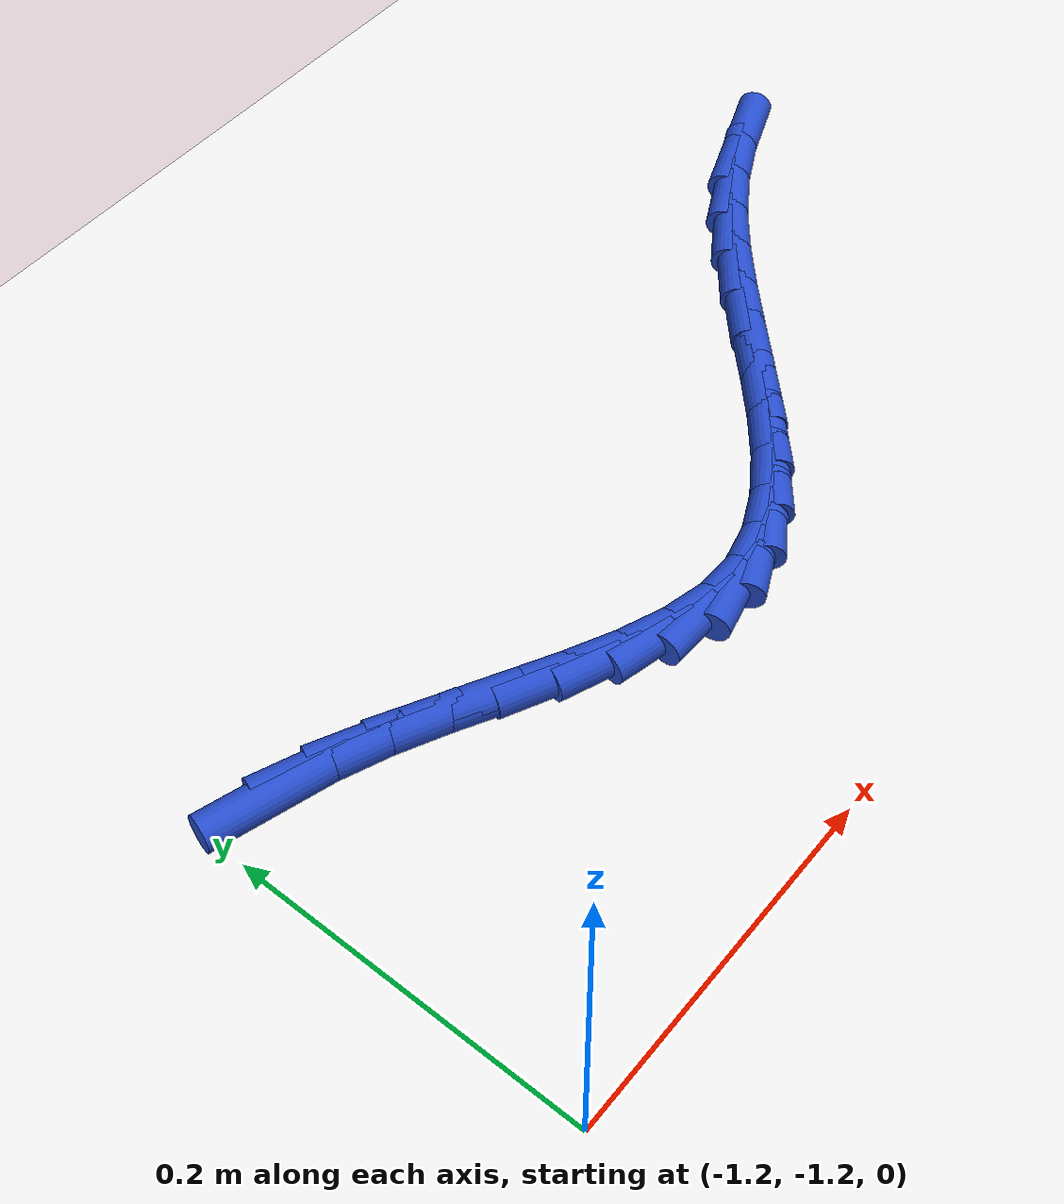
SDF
<sdf version="1.6">
 <world name="default">
  <model name="ground_plane">
   <static>1</static>
   <link name="link">
    <collision name="collision">
     <geometry><plane><normal>0 0 1</normal><size>100 100</size></plane></geometry>
     <surface><friction><ode><mu>100</mu><mu2>50</mu2></ode></friction></surface>
    </collision>
    <visual name="visual">
     <cast_shadows>0</cast_shadows>
     <geometry><plane><normal>0 0 1</normal><size>100 100</size></plane></geometry>
     <material>
      <script><uri>file://media/materials/scripts/gazebo.material</uri><name>Gazebo/WhiteGlow</name></script>
     </material>
    </visual>
   </link>
  </model>
  <model name="line">
   <link name="link_188">
    <pose>-1.1666198105476937 -0.989387603852553 0.01 0 1.57 -0.2926532367703987</pose>
    <collision name="collision">
     <geometry><cylinder><radius>0.01</radius><length>0.08</length></cylinder></geometry>
    </collision>
    <visual name="visual">
     <material>
      <script><name>Gazebo/Blue</name><uri>file://media/materials/scripts/gazebo.material</uri></script>
     </material>
     <geometry><cylinder><radius>0.01</radius><length>0.08</length></cylinder></geometry>
    </visual>
   </link>
   <link name="link_189">
    <pose>-1.1386888721834287 -0.997803323812133 0.01 0 1.57 -0.3842840730936396</pose>
    <collision name="collision">
     <geometry><cylinder><radius>0.01</radius><length>0.08</length></cylinder></geometry>
    </collision>
    <visual name="visual">
     <material>
      <script><name>Gazebo/Blue</name><uri>file://media/materials/scripts/gazebo.material</uri></script>
     </material>
     <geometry><cylinder><radius>0.01</radius><length>0.08</length></cylinder></geometry>
    </visual>
   </link>
   <link name="link_190">
    <pose>-1.1108244035250654 -1.0090714022984135 0.01 0 1.57 -0.4567717611284296</pose>
    <collision name="collision">
     <geometry><cylinder><radius>0.01</radius><length>0.08</length></cylinder></geometry>
    </collision>
    <visual name="visual">
     <material>
      <script><name>Gazebo/Blue</name><uri>file://media/materials/scripts/gazebo.material</uri></script>
     </material>
     <geometry><cylinder><radius>0.01</radius><length>0.08</length></cylinder></geometry>
    </visual>
   </link>
   <link name="link_191">
    <pose>-1.082937738401519 -1.0227758717054432 0.01 0 1.57 -0.49263852632582406</pose>
    <collision name="collision">
     <geometry><cylinder><radius>0.01</radius><length>0.08</length></cylinder></geometry>
    </collision>
    <visual name="visual">
     <material>
      <script><name>Gazebo/Blue</name><uri>file://media/materials/scripts/gazebo.material</uri></script>
     </material>
     <geometry><cylinder><radius>0.01</radius><length>0.08</length></cylinder></geometry>
    </visual>
   </link>
   <link name="link_192">
    <pose>-1.0551475939596373 -1.037693124515692 0.01 0 1.57 -0.4920223876786284</pose>
    <collision name="collision">
     <geometry><cylinder><radius>0.01</radius><length>0.08</length></cylinder></geometry>
    </collision>
    <visual name="visual">
     <material>
      <script><name>Gazebo/Blue</name><uri>file://media/materials/scripts/gazebo.material</uri></script>
     </material>
     <geometry><cylinder><radius>0.01</radius><length>0.08</length></cylinder></geometry>
    </visual>
   </link>
   <link name="link_193">
    <pose>-1.0276103803752283 -1.0524527603312779 0.01 0 1.57 -0.45379962881411195</pose>
    <collision name="collision">
     <geometry><cylinder><radius>0.01</radius><length>0.08</length></cylinder></geometry>
    </collision>
    <visual name="visual">
     <material>
      <script><name>Gazebo/Blue</name><uri>file://media/materials/scripts/gazebo.material</uri></script>
     </material>
     <geometry><cylinder><radius>0.01</radius><length>0.08</length></cylinder></geometry>
    </visual>
   </link>
   <link name="link_194">
    <pose>-1.0004825078241004 -1.0656843787543187 0.01 0 1.57 -0.37100530811576016</pose>
    <collision name="collision">
     <geometry><cylinder><radius>0.01</radius><length>0.08</length></cylinder></geometry>
    </collision>
    <visual name="visual">
     <material>
      <script><name>Gazebo/Blue</name><uri>file://media/materials/scripts/gazebo.material</uri></script>
     </material>
     <geometry><cylinder><radius>0.01</radius><length>0.08</length></cylinder></geometry>
    </visual>
   </link>
   <link name="link_195">
    <pose>-0.9739203864820616 -1.0760175793869322 0.01 0 1.57 -0.23051824615329597</pose>
    <collision name="collision">
     <geometry><cylinder><radius>0.01</radius><length>0.08</length></cylinder></geometry>
    </collision>
    <visual name="visual">
     <material>
      <script><name>Gazebo/Blue</name><uri>file://media/materials/scripts/gazebo.material</uri></script>
     </material>
     <geometry><cylinder><radius>0.01</radius><length>0.08</length></cylinder></geometry>
    </visual>
   </link>
   <link name="link_196">
    <pose>-0.94808042652492 -1.0820819618312363 0.01 0 1.57 -0.01742505398949145</pose>
    <collision name="collision">
     <geometry><cylinder><radius>0.01</radius><length>0.08</length></cylinder></geometry>
    </collision>
    <visual name="visual">
     <material>
      <script><name>Gazebo/Blue</name><uri>file://media/materials/scripts/gazebo.material</uri></script>
     </material>
     <geometry><cylinder><radius>0.01</radius><length>0.08</length></cylinder></geometry>
    </visual>
   </link>
   <link name="link_197">
    <pose>-0.923117458117706 -1.0825169869336153 0.01 0 1.57 0.23414818914813035</pose>
    <collision name="collision">
     <geometry><cylinder><radius>0.01</radius><length>0.08</length></cylinder></geometry>
    </collision>
    <visual name="visual">
     <material>
      <script><name>Gazebo/Blue</name><uri>file://media/materials/scripts/gazebo.material</uri></script>
     </material>
     <geometry><cylinder><radius>0.01</radius><length>0.08</length></cylinder></geometry>
    </visual>
   </link>
   <link name="link_198">
    <pose>-0.8990556376542646 -1.076777683380147 0.01 0 1.57 0.44163502539639815</pose>
    <collision name="collision">
     <geometry><cylinder><radius>0.01</radius><length>0.08</length></cylinder></geometry>
    </collision>
    <visual name="visual">
     <material>
      <script><name>Gazebo/Blue</name><uri>file://media/materials/scripts/gazebo.material</uri></script>
     </material>
     <geometry><cylinder><radius>0.01</radius><length>0.08</length></cylinder></geometry>
    </visual>
   </link>
   <link name="link_199">
    <pose>-0.8756927100429807 -1.065732170826916 0.01 0 1.57 0.5905258668097335</pose>
    <collision name="collision">
     <geometry><cylinder><radius>0.01</radius><length>0.08</length></cylinder></geometry>
    </collision>
    <visual name="visual">
     <material>
      <script><name>Gazebo/Blue</name><uri>file://media/materials/scripts/gazebo.material</uri></script>
     </material>
     <geometry><cylinder><radius>0.01</radius><length>0.08</length></cylinder></geometry>
    </visual>
   </link>
   <link name="link_200">
    <pose>-0.852803859904976 -1.0503893733514271 0.01 0 1.57 0.6885766447528243</pose>
    <collision name="collision">
     <geometry><cylinder><radius>0.01</radius><length>0.08</length></cylinder></geometry>
    </collision>
    <visual name="visual">
     <material>
      <script><name>Gazebo/Blue</name><uri>file://media/materials/scripts/gazebo.material</uri></script>
     </material>
     <geometry><cylinder><radius>0.01</radius><length>0.08</length></cylinder></geometry>
    </visual>
   </link>
   <link name="link_201">
    <pose>-0.8301642718613719 -1.0317582150311841 0.01 0 1.57 0.7462563638256348</pose>
    <collision name="collision">
     <geometry><cylinder><radius>0.01</radius><length>0.08</length></cylinder></geometry>
    </collision>
    <visual name="visual">
     <material>
      <script><name>Gazebo/Blue</name><uri>file://media/materials/scripts/gazebo.material</uri></script>
     </material>
     <geometry><cylinder><radius>0.01</radius><length>0.08</length></cylinder></geometry>
    </visual>
   </link>
   <link name="link_202">
    <pose>-0.8075491305332901 -1.0108476199436918 0.01 0 1.57 0.771300210807332</pose>
    <collision name="collision">
     <geometry><cylinder><radius>0.01</radius><length>0.08</length></cylinder></geometry>
    </collision>
    <visual name="visual">
     <material>
      <script><name>Gazebo/Blue</name><uri>file://media/materials/scripts/gazebo.material</uri></script>
     </material>
     <geometry><cylinder><radius>0.01</radius><length>0.08</length></cylinder></geometry>
    </visual>
   </link>
   <link name="link_203">
    <pose>-0.7847336205418518 -0.9886665121664548 0.01 0 1.57 0.7679319358033134</pose>
    <collision name="collision">
     <geometry><cylinder><radius>0.01</radius><length>0.08</length></cylinder></geometry>
    </collision>
    <visual name="visual">
     <material>
      <script><name>Gazebo/Blue</name><uri>file://media/materials/scripts/gazebo.material</uri></script>
     </material>
     <geometry><cylinder><radius>0.01</radius><length>0.08</length></cylinder></geometry>
    </visual>
   </link>
   <link name="link_204">
    <pose>-0.7614929265081788 -0.9662238157769775 0.01 0 1.57 0.7372773557090407</pose>
    <collision name="collision">
     <geometry><cylinder><radius>0.01</radius><length>0.08</length></cylinder></geometry>
    </collision>
    <visual name="visual">
     <material>
      <script><name>Gazebo/Blue</name><uri>file://media/materials/scripts/gazebo.material</uri></script>
     </material>
     <geometry><cylinder><radius>0.01</radius><length>0.08</length></cylinder></geometry>
    </visual>
   </link>
   <link name="link_205">
    <pose>-0.7376022330533921 -0.9445284548527636 0.01 0 1.57 0.6778525423945287</pose>
    <collision name="collision">
     <geometry><cylinder><radius>0.01</radius><length>0.08</length></cylinder></geometry>
    </collision>
    <visual name="visual">
     <material>
      <script><name>Gazebo/Blue</name><uri>file://media/materials/scripts/gazebo.material</uri></script>
     </material>
     <geometry><cylinder><radius>0.01</radius><length>0.08</length></cylinder></geometry>
    </visual>
   </link>
   <link name="link_206">
    <pose>-0.7128367247986138 -0.9245893534713181 0.01 0 1.57 0.5864663372570725</pose>
    <collision name="collision">
     <geometry><cylinder><radius>0.01</radius><length>0.08</length></cylinder></geometry>
    </collision>
    <visual name="visual">
     <material>
      <script><name>Gazebo/Blue</name><uri>file://media/materials/scripts/gazebo.material</uri></script>
     </material>
     <geometry><cylinder><radius>0.01</radius><length>0.08</length></cylinder></geometry>
    </visual>
   </link>
   <link name="link_207">
    <pose>-0.6869746382402943 -0.9074052930578201 0.01 0 1.57 0.4781667182449517</pose>
    <collision name="collision">
     <geometry><cylinder><radius>0.01</radius><length>0.08</length></cylinder></geometry>
    </collision>
    <visual name="visual">
     <material>
      <script><name>Gazebo/Blue</name><uri>file://media/materials/scripts/gazebo.material</uri></script>
     </material>
     <geometry><cylinder><radius>0.01</radius><length>0.08</length></cylinder></geometry>
    </visual>
   </link>
   <link name="link_208">
    <pose>-0.6599652053364925 -0.8934067659269673 0.01 0 1.57 0.3823939818397694</pose>
    <collision name="collision">
     <geometry><cylinder><radius>0.01</radius><length>0.08</length></cylinder></geometry>
    </collision>
    <visual name="visual">
     <material>
      <script><name>Gazebo/Blue</name><uri>file://media/materials/scripts/gazebo.material</uri></script>
     </material>
     <geometry><cylinder><radius>0.01</radius><length>0.08</length></cylinder></geometry>
    </visual>
   </link>
  </model>
 </world>
</sdf>
